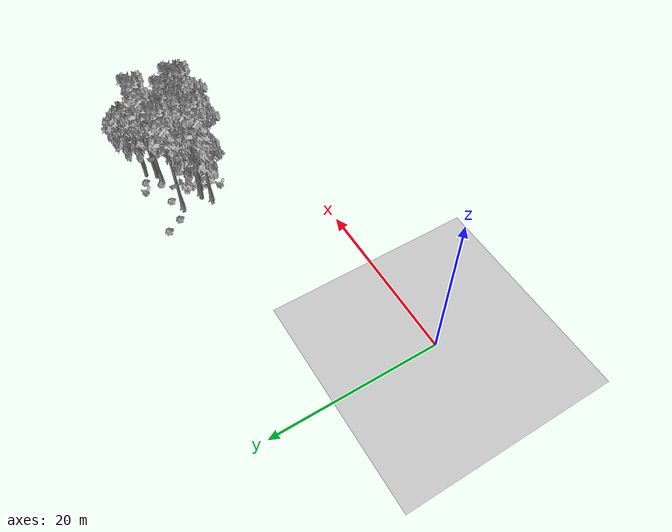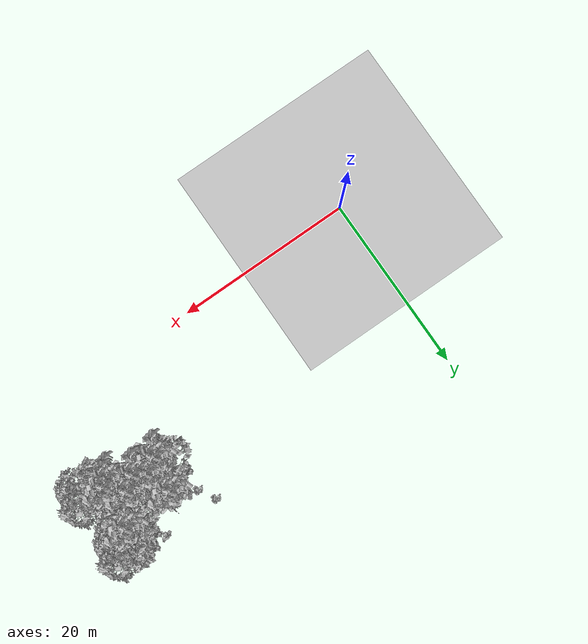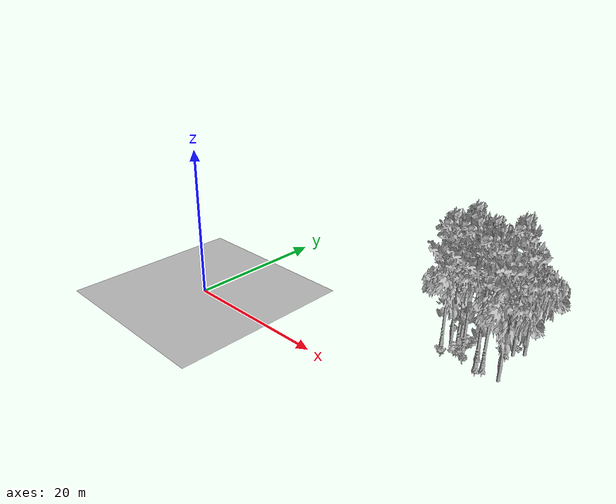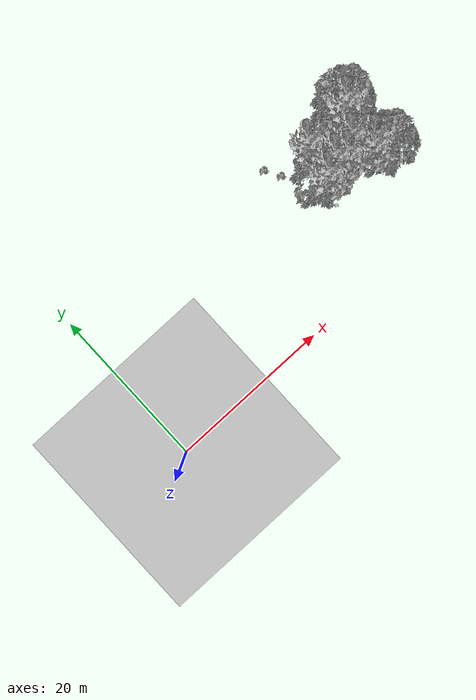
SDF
<sdf version="1.7">
 <world name="default">
  <model name="ground_plane">
   <static>1</static>
   <link name="link">
    <collision name="collision">
     <pose>-50 0 0 0 -0 0</pose>
     <geometry><plane><normal>0 0 1</normal><size>80 80</size></plane></geometry>
     <surface><contact><ode><min_depth>0.01</min_depth><max_vel>0</max_vel></ode></contact></surface>
    </collision>
    <visual name="grass">
     <cast_shadows>0</cast_shadows>
     <geometry>
      <mesh>
       <scale>0.46714285714285714 0.46714285714285714 0.1</scale>
       <uri>file://grass_plane/meshes/grass_plane.dae</uri>
      </mesh>
     </geometry>
    </visual>
   </link>
  </model>
  <model name="Tree 28">
   <static>1</static>
   <pose>30.783272138464454 11.489812814278999 0 1.57079 -0 0</pose>
   <link name="link">
    <collision name="collision">
     <geometry><mesh><scale>3.5 5 3.5</scale><uri>model://tree_9/meshes/tree_9.obj</uri></mesh></geometry>
    </collision>
    <visual name="visual">
     <geometry><mesh><scale>3.5 5 3.5</scale><uri>model://tree_9/meshes/tree_9.obj</uri></mesh></geometry>
    </visual>
   </link>
  </model>
  <model name="Tree 31">
   <static>1</static>
   <pose>32.39393690728703 12.331329005359109 0 1.57079 -0 0</pose>
   <link name="link">
    <collision name="collision">
     <geometry><mesh><scale>3.5 5 3.5</scale><uri>model://tree_9/meshes/tree_9.obj</uri></mesh></geometry>
    </collision>
    <visual name="visual">
     <geometry><mesh><scale>3.5 5 3.5</scale><uri>model://tree_9/meshes/tree_9.obj</uri></mesh></geometry>
    </visual>
   </link>
  </model>
  <model name="Tree 79">
   <static>1</static>
   <pose>36.40291296193408 11.124683486578242 0 1.57079 -0 0</pose>
   <link name="link">
    <collision name="collision">
     <geometry><mesh><scale>3.5 5 3.5</scale><uri>model://tree_9/meshes/tree_9.obj</uri></mesh></geometry>
    </collision>
    <visual name="visual">
     <geometry><mesh><scale>3.5 5 3.5</scale><uri>model://tree_9/meshes/tree_9.obj</uri></mesh></geometry>
    </visual>
   </link>
  </model>
  <model name="Tree 231">
   <static>1</static>
   <pose>38.65276008752569 10.339376679070718 0 1.57079 -0 0</pose>
   <link name="link">
    <collision name="collision">
     <geometry><mesh><scale>3.5 5 3.5</scale><uri>model://tree_2/meshes/tree_2.obj</uri></mesh></geometry>
    </collision>
    <visual name="visual">
     <geometry><mesh><scale>3.5 5 3.5</scale><uri>model://tree_2/meshes/tree_2.obj</uri></mesh></geometry>
    </visual>
   </link>
  </model>
  <model name="Tree 234">
   <static>1</static>
   <pose>31.356911011273937 12.457096409110534 0 1.57079 -0 0</pose>
   <link name="link">
    <collision name="collision">
     <geometry><mesh><scale>3.5 5 3.5</scale><uri>model://tree_2/meshes/tree_2.obj</uri></mesh></geometry>
    </collision>
    <visual name="visual">
     <geometry><mesh><scale>3.5 5 3.5</scale><uri>model://tree_2/meshes/tree_2.obj</uri></mesh></geometry>
    </visual>
   </link>
  </model>
  <model name="Tree 371">
   <static>1</static>
   <pose>37.53468805491346 15.86536549495814 0 1.57079 -0 0</pose>
   <link name="link">
    <collision name="collision">
     <geometry><mesh><scale>3.5 5 3.5</scale><uri>model://tree_2/meshes/tree_2.obj</uri></mesh></geometry>
    </collision>
    <visual name="visual">
     <geometry><mesh><scale>3.5 5 3.5</scale><uri>model://tree_2/meshes/tree_2.obj</uri></mesh></geometry>
    </visual>
   </link>
  </model>
  <model name="Tree 386">
   <static>1</static>
   <pose>34.839828846091564 12.763112119339624 0 1.57079 -0 0</pose>
   <link name="link">
    <collision name="collision">
     <geometry><mesh><scale>3.5 5 3.5</scale><uri>model://tree_9/meshes/tree_9.obj</uri></mesh></geometry>
    </collision>
    <visual name="visual">
     <geometry><mesh><scale>3.5 5 3.5</scale><uri>model://tree_9/meshes/tree_9.obj</uri></mesh></geometry>
    </visual>
   </link>
  </model>
  <model name="Tree 398">
   <static>1</static>
   <pose>36.89561176385929 15.60250229748761 0 1.57079 -0 0</pose>
   <link name="link">
    <collision name="collision">
     <geometry><mesh><scale>3.5 5 3.5</scale><uri>model://tree_9/meshes/tree_9.obj</uri></mesh></geometry>
    </collision>
    <visual name="visual">
     <geometry><mesh><scale>3.5 5 3.5</scale><uri>model://tree_9/meshes/tree_9.obj</uri></mesh></geometry>
    </visual>
   </link>
  </model>
  <model name="Tree 433">
   <static>1</static>
   <pose>35.80591249277872 10.653884085973566 0 1.57079 -0 0</pose>
   <link name="link">
    <collision name="collision">
     <geometry><mesh><scale>3.5 5 3.5</scale><uri>model://tree_9/meshes/tree_9.obj</uri></mesh></geometry>
    </collision>
    <visual name="visual">
     <geometry><mesh><scale>3.5 5 3.5</scale><uri>model://tree_9/meshes/tree_9.obj</uri></mesh></geometry>
    </visual>
   </link>
  </model>
  <model name="Tree 464">
   <static>1</static>
   <pose>38.44843064706674 16.925381411217515 0 1.57079 -0 0</pose>
   <link name="link">
    <collision name="collision">
     <geometry><mesh><scale>3.5 5 3.5</scale><uri>model://tree_2/meshes/tree_2.obj</uri></mesh></geometry>
    </collision>
    <visual name="visual">
     <geometry><mesh><scale>3.5 5 3.5</scale><uri>model://tree_2/meshes/tree_2.obj</uri></mesh></geometry>
    </visual>
   </link>
  </model>
  <model name="Tree 478">
   <static>1</static>
   <pose>33.461981654584534 11.754713566093038 0 1.57079 -0 0</pose>
   <link name="link">
    <collision name="collision">
     <geometry><mesh><scale>3.5 5 3.5</scale><uri>model://tree_9/meshes/tree_9.obj</uri></mesh></geometry>
    </collision>
    <visual name="visual">
     <geometry><mesh><scale>3.5 5 3.5</scale><uri>model://tree_9/meshes/tree_9.obj</uri></mesh></geometry>
    </visual>
   </link>
  </model>
  <model name="Tree 503">
   <static>1</static>
   <pose>31.397625564805054 15.06932168637914 0 1.57079 -0 0</pose>
   <link name="link">
    <collision name="collision">
     <geometry><mesh><scale>3.5 5 3.5</scale><uri>model://tree_9/meshes/tree_9.obj</uri></mesh></geometry>
    </collision>
    <visual name="visual">
     <geometry><mesh><scale>3.5 5 3.5</scale><uri>model://tree_9/meshes/tree_9.obj</uri></mesh></geometry>
    </visual>
   </link>
  </model>
  <model name="Bush 0">
   <static>1</static>
   <pose>35.24119052412247 18.20740863224274 0 1.57079 -0 0</pose>
   <link name="link">
    <collision name="collision">
     <geometry><mesh><scale>2 2 2</scale><uri>model://bush_0/meshes/bush_0.obj</uri></mesh></geometry>
     <surface><contact><collide_without_contact>false</collide_without_contact></contact></surface>
    </collision>
    <visual name="visual">
     <geometry><mesh><scale>2 2 2</scale><uri>model://bush_0/meshes/bush_0.obj</uri></mesh></geometry>
    </visual>
   </link>
  </model>
  <model name="Bush 46">
   <static>1</static>
   <pose>36.09747024650906 15.901132752911863 0 1.57079 -0 0</pose>
   <link name="link">
    <collision name="collision">
     <geometry><mesh><scale>2 2 2</scale><uri>model://bush_2/meshes/bush_2.obj</uri></mesh></geometry>
     <surface><contact><collide_without_contact>false</collide_without_contact></contact></surface>
    </collision>
    <visual name="visual">
     <geometry><mesh><scale>2 2 2</scale><uri>model://bush_2/meshes/bush_2.obj</uri></mesh></geometry>
    </visual>
   </link>
  </model>
  <model name="Bush 146">
   <static>1</static>
   <pose>37.381629288426836 17.450702721155636 0 1.57079 -0 0</pose>
   <link name="link">
    <collision name="collision">
     <geometry><mesh><scale>2 2 2</scale><uri>model://bush_2/meshes/bush_2.obj</uri></mesh></geometry>
     <surface><contact><collide_without_contact>false</collide_without_contact></contact></surface>
    </collision>
    <visual name="visual">
     <geometry><mesh><scale>2 2 2</scale><uri>model://bush_2/meshes/bush_2.obj</uri></mesh></geometry>
    </visual>
   </link>
  </model>
  <model name="Bush 147">
   <static>1</static>
   <pose>29.655458263859416 16.160897646112957 0 1.57079 -0 0</pose>
   <link name="link">
    <collision name="collision">
     <geometry><mesh><scale>2 2 2</scale><uri>model://bush_2/meshes/bush_2.obj</uri></mesh></geometry>
     <surface><contact><collide_without_contact>false</collide_without_contact></contact></surface>
    </collision>
    <visual name="visual">
     <geometry><mesh><scale>2 2 2</scale><uri>model://bush_2/meshes/bush_2.obj</uri></mesh></geometry>
    </visual>
   </link>
  </model>
  <model name="Bush 160">
   <static>1</static>
   <pose>34.33209517756461 10.284316685849717 0 1.57079 -0 0</pose>
   <link name="link">
    <collision name="collision">
     <geometry><mesh><scale>2 2 2</scale><uri>model://bush_5/meshes/bush_5.obj</uri></mesh></geometry>
     <surface><contact><collide_without_contact>false</collide_without_contact></contact></surface>
    </collision>
    <visual name="visual">
     <geometry><mesh><scale>2 2 2</scale><uri>model://bush_5/meshes/bush_5.obj</uri></mesh></geometry>
    </visual>
   </link>
  </model>
  <model name="Bush 163">
   <static>1</static>
   <pose>31.71749152032342 9.845583401851172 0 1.57079 -0 0</pose>
   <link name="link">
    <collision name="collision">
     <geometry><mesh><scale>2 2 2</scale><uri>model://bush_0/meshes/bush_0.obj</uri></mesh></geometry>
     <surface><contact><collide_without_contact>false</collide_without_contact></contact></surface>
    </collision>
    <visual name="visual">
     <geometry><mesh><scale>2 2 2</scale><uri>model://bush_0/meshes/bush_0.obj</uri></mesh></geometry>
    </visual>
   </link>
  </model>
  <model name="Bush 170">
   <static>1</static>
   <pose>32.852775965090856 15.892508865536982 0 1.57079 -0 0</pose>
   <link name="link">
    <collision name="collision">
     <geometry><mesh><scale>2 2 2</scale><uri>model://bush_2/meshes/bush_2.obj</uri></mesh></geometry>
     <surface><contact><collide_without_contact>false</collide_without_contact></contact></surface>
    </collision>
    <visual name="visual">
     <geometry><mesh><scale>2 2 2</scale><uri>model://bush_2/meshes/bush_2.obj</uri></mesh></geometry>
    </visual>
   </link>
  </model>
  <model name="Bush 297">
   <static>1</static>
   <pose>33.15122220110115 13.351781764726368 0 1.57079 -0 0</pose>
   <link name="link">
    <collision name="collision">
     <geometry><mesh><scale>2 2 2</scale><uri>model://bush_1/meshes/bush_1.obj</uri></mesh></geometry>
     <surface><contact><collide_without_contact>false</collide_without_contact></contact></surface>
    </collision>
    <visual name="visual">
     <geometry><mesh><scale>2 2 2</scale><uri>model://bush_1/meshes/bush_1.obj</uri></mesh></geometry>
    </visual>
   </link>
  </model>
  <model name="Bush 402">
   <static>1</static>
   <pose>28.606791841295887 18.002748030396262 0 1.57079 -0 0</pose>
   <link name="link">
    <collision name="collision">
     <geometry><mesh><scale>2 2 2</scale><uri>model://bush_2/meshes/bush_2.obj</uri></mesh></geometry>
     <surface><contact><collide_without_contact>false</collide_without_contact></contact></surface>
    </collision>
    <visual name="visual">
     <geometry><mesh><scale>2 2 2</scale><uri>model://bush_2/meshes/bush_2.obj</uri></mesh></geometry>
    </visual>
   </link>
  </model>
  <model name="Bush 455">
   <static>1</static>
   <pose>32.771101065090775 10.935303423922875 0 1.57079 -0 0</pose>
   <link name="link">
    <collision name="collision">
     <geometry><mesh><scale>2 2 2</scale><uri>model://bush_1/meshes/bush_1.obj</uri></mesh></geometry>
     <surface><contact><collide_without_contact>false</collide_without_contact></contact></surface>
    </collision>
    <visual name="visual">
     <geometry><mesh><scale>2 2 2</scale><uri>model://bush_1/meshes/bush_1.obj</uri></mesh></geometry>
    </visual>
   </link>
  </model>
  <model name="Bush 631">
   <static>1</static>
   <pose>33.185366210790946 12.892253533809289 0 1.57079 -0 0</pose>
   <link name="link">
    <collision name="collision">
     <geometry><mesh><scale>2 2 2</scale><uri>model://bush_0/meshes/bush_0.obj</uri></mesh></geometry>
     <surface><contact><collide_without_contact>false</collide_without_contact></contact></surface>
    </collision>
    <visual name="visual">
     <geometry><mesh><scale>2 2 2</scale><uri>model://bush_0/meshes/bush_0.obj</uri></mesh></geometry>
    </visual>
   </link>
  </model>
 </world>
</sdf>
